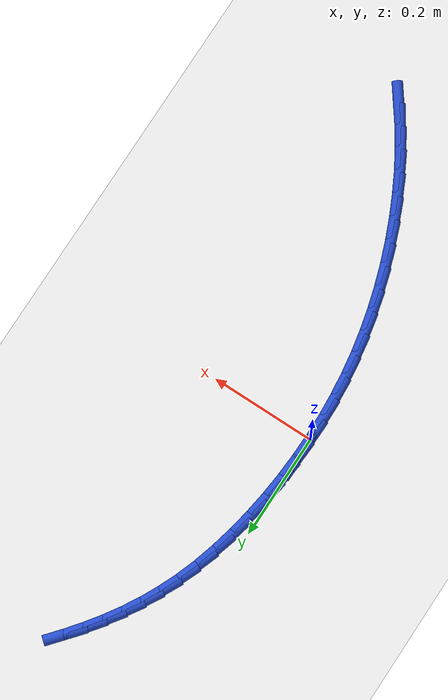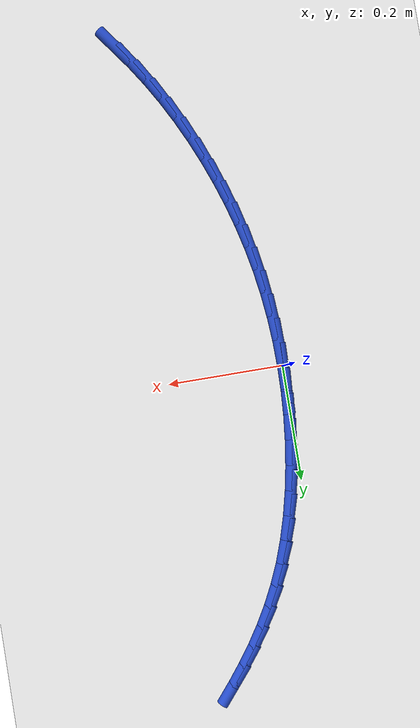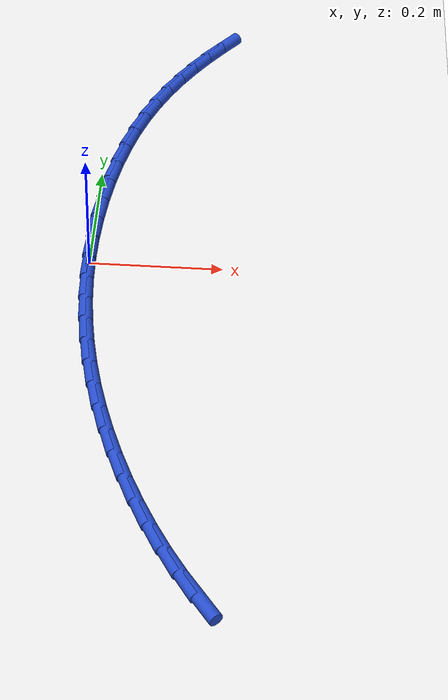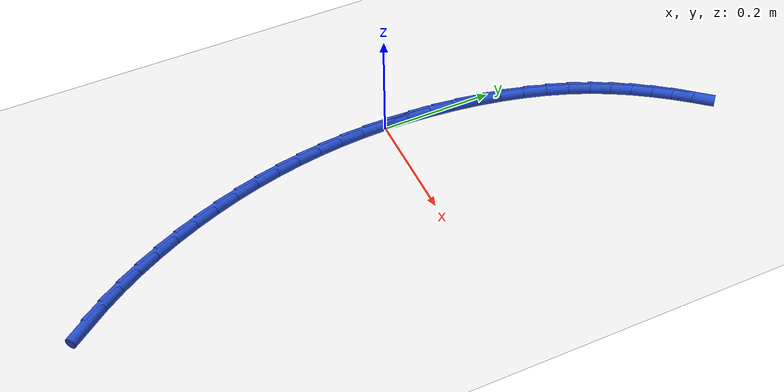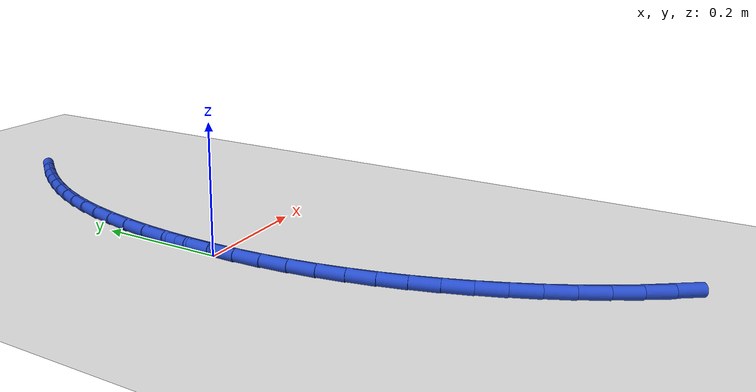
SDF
<sdf version="1.6">
 <world name="default">
  <model name="ground_plane">
   <static>1</static>
   <link name="link">
    <collision name="collision">
     <geometry><plane><normal>0 0 1</normal><size>100 100</size></plane></geometry>
     <surface><friction><ode><mu>100</mu><mu2>50</mu2></ode></friction></surface>
    </collision>
    <visual name="visual">
     <cast_shadows>0</cast_shadows>
     <geometry><plane><normal>0 0 1</normal><size>100 100</size></plane></geometry>
     <material>
      <script><uri>file://media/materials/scripts/gazebo.material</uri><name>Gazebo/WhiteGlow</name></script>
     </material>
    </visual>
   </link>
  </model>
  <model name="line">
   <link name="link_0">
    <pose>-1.9949319973733282e-17 1.3877787807814457e-17 0.01 0 1.57 1.5492984089262198</pose>
    <collision name="collision">
     <geometry><cylinder><radius>0.01</radius><length>0.08</length></cylinder></geometry>
    </collision>
    <visual name="visual">
     <material>
      <script><name>Gazebo/Blue</name><uri>file://media/materials/scripts/gazebo.material</uri></script>
     </material>
     <geometry><cylinder><radius>0.01</radius><length>0.08</length></cylinder></geometry>
    </visual>
   </link>
   <link name="link_1">
    <pose>0.0009379973051237275 0.043625285231856235 0.01 0 1.57 1.5080627157144535</pose>
    <collision name="collision">
     <geometry><cylinder><radius>0.01</radius><length>0.08</length></cylinder></geometry>
    </collision>
    <visual name="visual">
     <material>
      <script><name>Gazebo/Blue</name><uri>file://media/materials/scripts/gazebo.material</uri></script>
     </material>
     <geometry><cylinder><radius>0.01</radius><length>0.08</length></cylinder></geometry>
    </visual>
   </link>
   <link name="link_2">
    <pose>0.003688213140414482 0.08740735055196684 0.01 0 1.57 1.466742938459368</pose>
    <collision name="collision">
     <geometry><cylinder><radius>0.01</radius><length>0.08</length></cylinder></geometry>
    </collision>
    <visual name="visual">
     <material>
      <script><name>Gazebo/Blue</name><uri>file://media/materials/scripts/gazebo.material</uri></script>
     </material>
     <geometry><cylinder><radius>0.01</radius><length>0.08</length></cylinder></geometry>
    </visual>
   </link>
   <link name="link_3">
    <pose>0.008240092487205775 0.13099497084447456 0.01 0 1.57 1.424481866338561</pose>
    <collision name="collision">
     <geometry><cylinder><radius>0.01</radius><length>0.08</length></cylinder></geometry>
    </collision>
    <visual name="visual">
     <material>
      <script><name>Gazebo/Blue</name><uri>file://media/materials/scripts/gazebo.material</uri></script>
     </material>
     <geometry><cylinder><radius>0.01</radius><length>0.08</length></cylinder></geometry>
    </visual>
   </link>
   <link name="link_4">
    <pose>0.014583080326831128 0.17403692099352203 0.01 0 1.57 1.380379664769325</pose>
    <collision name="collision">
     <geometry><cylinder><radius>0.01</radius><length>0.08</length></cylinder></geometry>
    </collision>
    <visual name="visual">
     <material>
      <script><name>Gazebo/Blue</name><uri>file://media/materials/scripts/gazebo.material</uri></script>
     </material>
     <geometry><cylinder><radius>0.01</radius><length>0.08</length></cylinder></geometry>
    </visual>
   </link>
   <link name="link_5">
    <pose>0.022706621640624085 0.216181975883252 0.01 0 1.57 1.3334424046194615</pose>
    <collision name="collision">
     <geometry><cylinder><radius>0.01</radius><length>0.08</length></cylinder></geometry>
    </collision>
    <visual name="visual">
     <material>
      <script><name>Gazebo/Blue</name><uri>file://media/materials/scripts/gazebo.material</uri></script>
     </material>
     <geometry><cylinder><radius>0.01</radius><length>0.08</length></cylinder></geometry>
    </visual>
   </link>
   <link name="link_6">
    <pose>0.03260016140991818 0.2570789103978071 0.01 0 1.57 1.2825244340216646</pose>
    <collision name="collision">
     <geometry><cylinder><radius>0.01</radius><length>0.08</length></cylinder></geometry>
    </collision>
    <visual name="visual">
     <material>
      <script><name>Gazebo/Blue</name><uri>file://media/materials/scripts/gazebo.material</uri></script>
     </material>
     <geometry><cylinder><radius>0.01</radius><length>0.08</length></cylinder></geometry>
    </visual>
   </link>
   <link name="link_7">
    <pose>0.04425314461604691 0.2963764994213299 0.01 0 1.57 1.2262796433510488</pose>
    <collision name="collision">
     <geometry><cylinder><radius>0.01</radius><length>0.08</length></cylinder></geometry>
    </collision>
    <visual name="visual">
     <material>
      <script><name>Gazebo/Blue</name><uri>file://media/materials/scripts/gazebo.material</uri></script>
     </material>
     <geometry><cylinder><radius>0.01</radius><length>0.08</length></cylinder></geometry>
    </visual>
   </link>
   <link name="link_8">
    <pose>0.057654824972781044 0.3337250938340717 0.01 0 1.57 1.165661050903397</pose>
    <collision name="collision">
     <geometry><cylinder><radius>0.01</radius><length>0.08</length></cylinder></geometry>
    </collision>
    <visual name="visual">
     <material>
      <script><name>Gazebo/Blue</name><uri>file://media/materials/scripts/gazebo.material</uri></script>
     </material>
     <geometry><cylinder><radius>0.01</radius><length>0.08</length></cylinder></geometry>
    </visual>
   </link>
   <link name="link_9">
    <pose>0.0727706078944984 0.3689715484424024 0.01 0 1.57 1.1056971633202628</pose>
    <collision name="collision">
     <geometry><cylinder><radius>0.01</radius><length>0.08</length></cylinder></geometry>
    </collision>
    <visual name="visual">
     <material>
      <script><name>Gazebo/Blue</name><uri>file://media/materials/scripts/gazebo.material</uri></script>
     </material>
     <geometry><cylinder><radius>0.01</radius><length>0.08</length></cylinder></geometry>
    </visual>
   </link>
   <link name="link_10">
    <pose>0.08951919778035933 0.4023475225493513 0.01 0 1.57 1.0484859094666872</pose>
    <collision name="collision">
     <geometry><cylinder><radius>0.01</radius><length>0.08</length></cylinder></geometry>
    </collision>
    <visual name="visual">
     <material>
      <script><name>Gazebo/Blue</name><uri>file://media/materials/scripts/gazebo.material</uri></script>
     </material>
     <geometry><cylinder><radius>0.01</radius><length>0.08</length></cylinder></geometry>
    </visual>
   </link>
   <link name="link_11">
    <pose>0.1078138793877399 0.4341293319288855 0.01 0 1.57 0.9955183735203197</pose>
    <collision name="collision">
     <geometry><cylinder><radius>0.01</radius><length>0.08</length></cylinder></geometry>
    </collision>
    <visual name="visual">
     <material>
      <script><name>Gazebo/Blue</name><uri>file://media/materials/scripts/gazebo.material</uri></script>
     </material>
     <geometry><cylinder><radius>0.01</radius><length>0.08</length></cylinder></geometry>
    </visual>
   </link>
   <link name="link_12">
    <pose>0.12756793747401624 0.46459329235497243 0.01 0 1.57 0.9480599318399198</pose>
    <collision name="collision">
     <geometry><cylinder><radius>0.01</radius><length>0.08</length></cylinder></geometry>
    </collision>
    <visual name="visual">
     <material>
      <script><name>Gazebo/Blue</name><uri>file://media/materials/scripts/gazebo.material</uri></script>
     </material>
     <geometry><cylinder><radius>0.01</radius><length>0.08</length></cylinder></geometry>
    </visual>
   </link>
   <link name="link_13">
    <pose>0.14869465679656432 0.4940157196015791 0.01 0 1.57 0.9070687154058916</pose>
    <collision name="collision">
     <geometry><cylinder><radius>0.01</radius><length>0.08</length></cylinder></geometry>
    </collision>
    <visual name="visual">
     <material>
      <script><name>Gazebo/Blue</name><uri>file://media/materials/scripts/gazebo.material</uri></script>
     </material>
     <geometry><cylinder><radius>0.01</radius><length>0.08</length></cylinder></geometry>
    </visual>
   </link>
   <link name="link_14">
    <pose>0.17110732211276017 0.522672929442673 0.01 0 1.57 0.8731673445609649</pose>
    <collision name="collision">
     <geometry><cylinder><radius>0.01</radius><length>0.08</length></cylinder></geometry>
    </collision>
    <visual name="visual">
     <material>
      <script><name>Gazebo/Blue</name><uri>file://media/materials/scripts/gazebo.material</uri></script>
     </material>
     <geometry><cylinder><radius>0.01</radius><length>0.08</length></cylinder></geometry>
    </visual>
   </link>
   <link name="link_175">
    <pose>0.19797163025360412 -0.598123124320017 0.01 0 1.57 -0.9378916044093352</pose>
    <collision name="collision">
     <geometry><cylinder><radius>0.01</radius><length>0.08</length></cylinder></geometry>
    </collision>
    <visual name="visual">
     <material>
      <script><name>Gazebo/Blue</name><uri>file://media/materials/scripts/gazebo.material</uri></script>
     </material>
     <geometry><cylinder><radius>0.01</radius><length>0.08</length></cylinder></geometry>
    </visual>
   </link>
   <link name="link_176">
    <pose>0.17349096025955668 -0.5647513027093787 0.01 0 1.57 -0.9903031085537202</pose>
    <collision name="collision">
     <geometry><cylinder><radius>0.01</radius><length>0.08</length></cylinder></geometry>
    </collision>
    <visual name="visual">
     <material>
      <script><name>Gazebo/Blue</name><uri>file://media/materials/scripts/gazebo.material</uri></script>
     </material>
     <geometry><cylinder><radius>0.01</radius><length>0.08</length></cylinder></geometry>
    </visual>
   </link>
   <link name="link_177">
    <pose>0.15037918760221874 -0.5295131525229847 0.01 0 1.57 -1.038898184188787</pose>
    <collision name="collision">
     <geometry><cylinder><radius>0.01</radius><length>0.08</length></cylinder></geometry>
    </collision>
    <visual name="visual">
     <material>
      <script><name>Gazebo/Blue</name><uri>file://media/materials/scripts/gazebo.material</uri></script>
     </material>
     <geometry><cylinder><radius>0.01</radius><length>0.08</length></cylinder></geometry>
    </visual>
   </link>
   <link name="link_178">
    <pose>0.12870289683194291 -0.49267813203878047 0.01 0 1.57 -1.0844993605840574</pose>
    <collision name="collision">
     <geometry><cylinder><radius>0.01</radius><length>0.08</length></cylinder></geometry>
    </collision>
    <visual name="visual">
     <material>
      <script><name>Gazebo/Blue</name><uri>file://media/materials/scripts/gazebo.material</uri></script>
     </material>
     <geometry><cylinder><radius>0.01</radius><length>0.08</length></cylinder></geometry>
    </visual>
   </link>
   <link name="link_179">
    <pose>0.10852867249908225 -0.45451569953471216 0.01 0 1.57 -1.1278496779792808</pose>
    <collision name="collision">
     <geometry><cylinder><radius>0.01</radius><length>0.08</length></cylinder></geometry>
    </collision>
    <visual name="visual">
     <material>
      <script><name>Gazebo/Blue</name><uri>file://media/materials/scripts/gazebo.material</uri></script>
     </material>
     <geometry><cylinder><radius>0.01</radius><length>0.08</length></cylinder></geometry>
    </visual>
   </link>
   <link name="link_180">
    <pose>0.08992309915398847 -0.41529531328872354 0.01 0 1.57 -1.16963376938325</pose>
    <collision name="collision">
     <geometry><cylinder><radius>0.01</radius><length>0.08</length></cylinder></geometry>
    </collision>
    <visual name="visual">
     <material>
      <script><name>Gazebo/Blue</name><uri>file://media/materials/scripts/gazebo.material</uri></script>
     </material>
     <geometry><cylinder><radius>0.01</radius><length>0.08</length></cylinder></geometry>
    </visual>
   </link>
   <link name="link_181">
    <pose>0.07295276134701463 -0.37528643157876085 0.01 0 1.57 -1.2105004118318554</pose>
    <collision name="collision">
     <geometry><cylinder><radius>0.01</radius><length>0.08</length></cylinder></geometry>
    </collision>
    <visual name="visual">
     <material>
      <script><name>Gazebo/Blue</name><uri>file://media/materials/scripts/gazebo.material</uri></script>
     </material>
     <geometry><cylinder><radius>0.01</radius><length>0.08</length></cylinder></geometry>
    </visual>
   </link>
   <link name="link_182">
    <pose>0.05768424362851339 -0.3347585126827695 0.01 0 1.57 -1.2511512776272942</pose>
    <collision name="collision">
     <geometry><cylinder><radius>0.01</radius><length>0.08</length></cylinder></geometry>
    </collision>
    <visual name="visual">
     <material>
      <script><name>Gazebo/Blue</name><uri>file://media/materials/scripts/gazebo.material</uri></script>
     </material>
     <geometry><cylinder><radius>0.01</radius><length>0.08</length></cylinder></geometry>
    </visual>
   </link>
   <link name="link_183">
    <pose>0.044179740397526764 -0.29395885710028247 0.01 0 1.57 -1.2925519933235712</pose>
    <collision name="collision">
     <geometry><cylinder><radius>0.01</radius><length>0.08</length></cylinder></geometry>
    </collision>
    <visual name="visual">
     <material>
      <script><name>Gazebo/Blue</name><uri>file://media/materials/scripts/gazebo.material</uri></script>
     </material>
     <geometry><cylinder><radius>0.01</radius><length>0.08</length></cylinder></geometry>
    </visual>
   </link>
   <link name="link_184">
    <pose>0.032463616150064774 -0.25294383190976216 0.01 0 1.57 -1.3348497275376467</pose>
    <collision name="collision">
     <geometry><cylinder><radius>0.01</radius><length>0.08</length></cylinder></geometry>
    </collision>
    <visual name="visual">
     <material>
      <script><name>Gazebo/Blue</name><uri>file://media/materials/scripts/gazebo.material</uri></script>
     </material>
     <geometry><cylinder><radius>0.01</radius><length>0.08</length></cylinder></geometry>
    </visual>
   </link>
   <link name="link_185">
    <pose>0.022540917197098075 -0.21167230229664918 0.01 0 1.57 -1.377790335739855</pose>
    <collision name="collision">
     <geometry><cylinder><radius>0.01</radius><length>0.08</length></cylinder></geometry>
    </collision>
    <visual name="visual">
     <material>
      <script><name>Gazebo/Blue</name><uri>file://media/materials/scripts/gazebo.material</uri></script>
     </material>
     <geometry><cylinder><radius>0.01</radius><length>0.08</length></cylinder></geometry>
    </visual>
   </link>
   <link name="link_186">
    <pose>0.014416534914349844 -0.17010235146402458 0.01 0 1.57 -1.4210983497348841</pose>
    <collision name="collision">
     <geometry><cylinder><radius>0.01</radius><length>0.08</length></cylinder></geometry>
    </collision>
    <visual name="visual">
     <material>
      <script><name>Gazebo/Blue</name><uri>file://media/materials/scripts/gazebo.material</uri></script>
     </material>
     <geometry><cylinder><radius>0.01</radius><length>0.08</length></cylinder></geometry>
    </visual>
   </link>
   <link name="link_187">
    <pose>0.008095360677542773 -0.12819206261496668 0.01 0 1.57 -1.4644877420046507</pose>
    <collision name="collision">
     <geometry><cylinder><radius>0.01</radius><length>0.08</length></cylinder></geometry>
    </collision>
    <visual name="visual">
     <material>
      <script><name>Gazebo/Blue</name><uri>file://media/materials/scripts/gazebo.material</uri></script>
     </material>
     <geometry><cylinder><radius>0.01</radius><length>0.08</length></cylinder></geometry>
    </visual>
   </link>
   <link name="link_188">
    <pose>0.003582285862400085 -0.08589951895255651 0.01 0 1.57 -1.507671233113434</pose>
    <collision name="collision">
     <geometry><cylinder><radius>0.01</radius><length>0.08</length></cylinder></geometry>
    </collision>
    <visual name="visual">
     <material>
      <script><name>Gazebo/Blue</name><uri>file://media/materials/scripts/gazebo.material</uri></script>
     </material>
     <geometry><cylinder><radius>0.01</radius><length>0.08</length></cylinder></geometry>
    </visual>
   </link>
   <link name="link_189">
    <pose>0.0008822018446448116 -0.043182803679874336 0.01 0 1.57 -1.5503696970415348</pose>
    <collision name="collision">
     <geometry><cylinder><radius>0.01</radius><length>0.08</length></cylinder></geometry>
    </collision>
    <visual name="visual">
     <material>
      <script><name>Gazebo/Blue</name><uri>file://media/materials/scripts/gazebo.material</uri></script>
     </material>
     <geometry><cylinder><radius>0.01</radius><length>0.08</length></cylinder></geometry>
    </visual>
   </link>
   <link name="link_190">
    <pose>-1.1275702593849246e-17 -2.0122792321330962e-16 0.01 0 1.57 1.5492717438060608</pose>
    <collision name="collision">
     <geometry><cylinder><radius>0.01</radius><length>0.08</length></cylinder></geometry>
    </collision>
    <visual name="visual">
     <material>
      <script><name>Gazebo/Blue</name><uri>file://media/materials/scripts/gazebo.material</uri></script>
     </material>
     <geometry><cylinder><radius>0.01</radius><length>0.08</length></cylinder></geometry>
    </visual>
   </link>
   <link name="link_191">
    <pose>0.0009405717041886513 0.04369080888398564 0.01 0 1.57 1.5492717438060606</pose>
    <collision name="collision">
     <geometry><cylinder><radius>0.01</radius><length>0.08</length></cylinder></geometry>
    </collision>
    <visual name="visual">
     <material>
      <script><name>Gazebo/Blue</name><uri>file://media/materials/scripts/gazebo.material</uri></script>
     </material>
     <geometry><cylinder><radius>0.01</radius><length>0.08</length></cylinder></geometry>
    </visual>
   </link>
  </model>
 </world>
</sdf>
